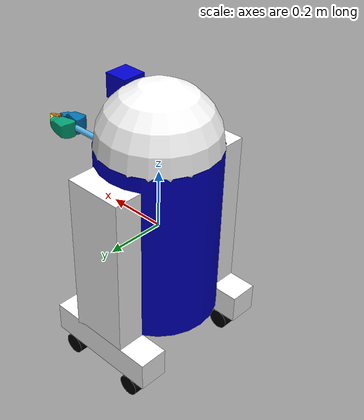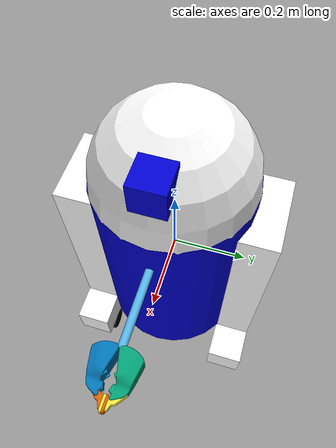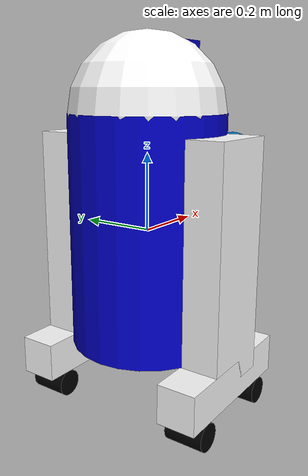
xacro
<?xml version="1.0"?>
<robot name="macroed" xmlns:xacro="http://ros.org/wiki/xacro">

  <xacro:property name="width" value="0.2" />
  <xacro:property name="leglen" value="0.6" />
  <xacro:property name="polelen" value="0.2" />
  <xacro:property name="bodylen" value="0.6" />
  <xacro:property name="baselen" value="0.4" />
  <xacro:property name="wheeldiam" value="0.07" />

  <material name="blue">
    <color rgba="0 0 0.8 1"/>
  </material>

  <material name="black">
    <color rgba="0 0 0 1"/>
  </material>

  <material name="white">
    <color rgba="1 1 1 1"/>
  </material>

  <xacro:macro name="default_inertial" params="mass">
    <inertial>
      <mass value="${mass}" />
      <inertia ixx="1e-3" ixy="0.0" ixz="0.0" iyy="1e-3" iyz="0.0" izz="1e-3" />
    </inertial>
  </xacro:macro>

  <link name="base_link">
    <visual>
      <geometry>
        <cylinder radius="${width}" length="${bodylen}"/>
      </geometry>
      <material name="blue"/>
    </visual>
    <collision>
      <geometry>
        <cylinder radius="${width}" length="${bodylen}"/>
      </geometry>
    </collision>
    <xacro:default_inertial mass="10"/>
  </link>

  <xacro:macro name="wheel" params="prefix suffix reflect">

    <link name="${prefix}_${suffix}_wheel">
      <visual>
        <origin xyz="0 0 0" rpy="${pi/2} 0 0" />
        <geometry>
          <cylinder radius="${wheeldiam/2}" length="0.1"/>
        </geometry>
        <material name="black"/>
      </visual>
      <collision>
        <origin xyz="0 0 0" rpy="${pi/2} 0 0" />
        <geometry>
          <cylinder radius="${wheeldiam/2}" length="0.1"/>
        </geometry>
      </collision>
      <xacro:default_inertial mass="1"/>
    </link>
    <joint name="${prefix}_${suffix}_wheel_joint" type="continuous">
      <axis xyz="0 1 0" rpy="0 0 0" />
      <parent link="${prefix}_base"/>
      <child link="${prefix}_${suffix}_wheel"/>
      <origin xyz="${baselen*reflect/3} 0 -${wheeldiam/2+.05}" rpy="0 0 0"/>
    </joint>

  </xacro:macro>

  <xacro:macro name="leg" params="prefix reflect">
    <link name="${prefix}_leg">
      <visual>
        <geometry>
          <box size="${leglen} 0.1 0.2"/>
        </geometry>
        <origin xyz="0 0 -${leglen/2}" rpy="0 ${pi/2} 0"/>
        <material name="white"/>
      </visual>
      <collision>
        <geometry>
          <box size="${leglen} 0.1 0.2"/>
        </geometry>
        <origin xyz="0 0 -${leglen/2}" rpy="0 ${pi/2} 0"/>
      </collision>
      <xacro:default_inertial mass="10"/>
    </link>

    <joint name="base_to_${prefix}_leg" type="fixed">
      <parent link="base_link"/>
      <child link="${prefix}_leg"/>
      <origin xyz="0 ${reflect*(width+.02)} 0.25" />
    </joint>

    <link name="${prefix}_base">
      <visual>
        <geometry>
          <box size="${baselen} 0.1 0.1"/>
        </geometry>
        <material name="white"/>
      </visual>
      <collision>
        <geometry>
          <box size="${baselen} 0.1 0.1"/>
        </geometry>
      </collision>
      <xacro:default_inertial mass="10"/>
    </link>

    <joint name="${prefix}_base_joint" type="fixed">
      <parent link="${prefix}_leg"/>
      <child link="${prefix}_base"/>
      <origin xyz="0 0 ${-leglen}" />
    </joint>
    <xacro:wheel prefix="${prefix}" suffix="front" reflect="1"/>
    <xacro:wheel prefix="${prefix}" suffix="back" reflect="-1"/>
  </xacro:macro>
  <xacro:leg prefix="right" reflect="-1" />
  <xacro:leg prefix="left" reflect="1" />

  <joint name="gripper_extension" type="prismatic">
    <parent link="base_link"/>
    <child link="gripper_pole"/>
    <limit effort="1000.0" lower="-${width*2-.02}" upper="0" velocity="0.5"/>
    <origin rpy="0 0 0" xyz="${width-.01} 0 0.2"/>
  </joint>

  <link name="gripper_pole">
    <visual>
      <geometry>
        <cylinder length="${polelen}" radius="0.01"/>
      </geometry>
      <origin xyz="${polelen/2} 0 0" rpy="0 ${pi/2} 0 "/>
    </visual>
    <collision>
      <geometry>
        <cylinder length="${polelen}" radius="0.01"/>
      </geometry>
      <origin xyz="${polelen/2} 0 0" rpy="0 ${pi/2} 0 "/>
    </collision>
    <xacro:default_inertial mass="0.05"/>
  </link>

  <xacro:macro name="gripper" params="prefix reflect">
    <joint name="${prefix}_gripper_joint" type="revolute">
      <axis xyz="0 0 ${reflect}"/>
      <limit effort="1000.0" lower="0.0" upper="0.548" velocity="0.5"/>
      <origin rpy="0 0 0" xyz="${polelen} ${reflect*0.01} 0"/>
      <parent link="gripper_pole"/>
      <child link="${prefix}_gripper"/>
    </joint>
    <link name="${prefix}_gripper">
      <visual>
        <origin rpy="${(reflect-1)/2*pi} 0 0" xyz="0 0 0"/>
        <geometry>
          <mesh filename="package://urdf_tutorial/meshes/l_finger.dae"/>
        </geometry>
      </visual>
      <collision>
        <geometry>
          <mesh filename="package://urdf_tutorial/meshes/l_finger.dae"/>
        </geometry>
        <origin rpy="${(reflect-1)/2*pi} 0 0" xyz="0 0 0"/>
      </collision>
      <xacro:default_inertial mass="0.05"/>
    </link>

    <joint name="${prefix}_tip_joint" type="fixed">
      <parent link="${prefix}_gripper"/>
      <child link="${prefix}_tip"/>
    </joint>
    <link name="${prefix}_tip">
      <visual>
        <origin rpy="${(reflect-1)/2*pi} 0 0" xyz="0.09137 0.00495 0"/>
        <geometry>
          <mesh filename="package://urdf_tutorial/meshes/l_finger_tip.dae"/>
        </geometry>
      </visual>
      <collision>
        <geometry>
          <mesh filename="package://urdf_tutorial/meshes/l_finger_tip.dae"/>
        </geometry>
        <origin rpy="${(reflect-1)/2*pi} 0 0" xyz="0.09137 0.00495 0"/>
      </collision>
      <xacro:default_inertial mass="0.05"/>
    </link>
  </xacro:macro>

  <xacro:gripper prefix="left" reflect="1" />
  <xacro:gripper prefix="right" reflect="-1" />

  <link name="head">
    <visual>
      <geometry>
        <sphere radius="${width}"/>
      </geometry>
      <material name="white"/>
    </visual>
    <collision>
      <geometry>
        <sphere radius="${width}"/>
      </geometry>
    </collision>
    <xacro:default_inertial mass="2"/>
  </link>

  <joint name="head_swivel" type="continuous">
    <parent link="base_link"/>
    <child link="head"/>
    <axis xyz="0 0 1"/>
    <origin xyz="0 0 ${bodylen/2}"/>
  </joint>

  <link name="box">
    <visual>
      <geometry>
        <box size="0.08 0.08 0.08"/>
      </geometry>
      <material name="blue"/>
      <origin xyz="-0.04 0 0"/>
    </visual>
    <collision>
      <geometry>
        <box size="0.08 0.08 0.08"/>
      </geometry>
    </collision>
    <xacro:default_inertial mass="1"/>
  </link>

  <joint name="tobox" type="fixed">
    <parent link="head"/>
    <child link="box"/>
    <origin xyz="${.707*width+0.04} 0 ${.707*width}"/>
  </joint>

</robot>
